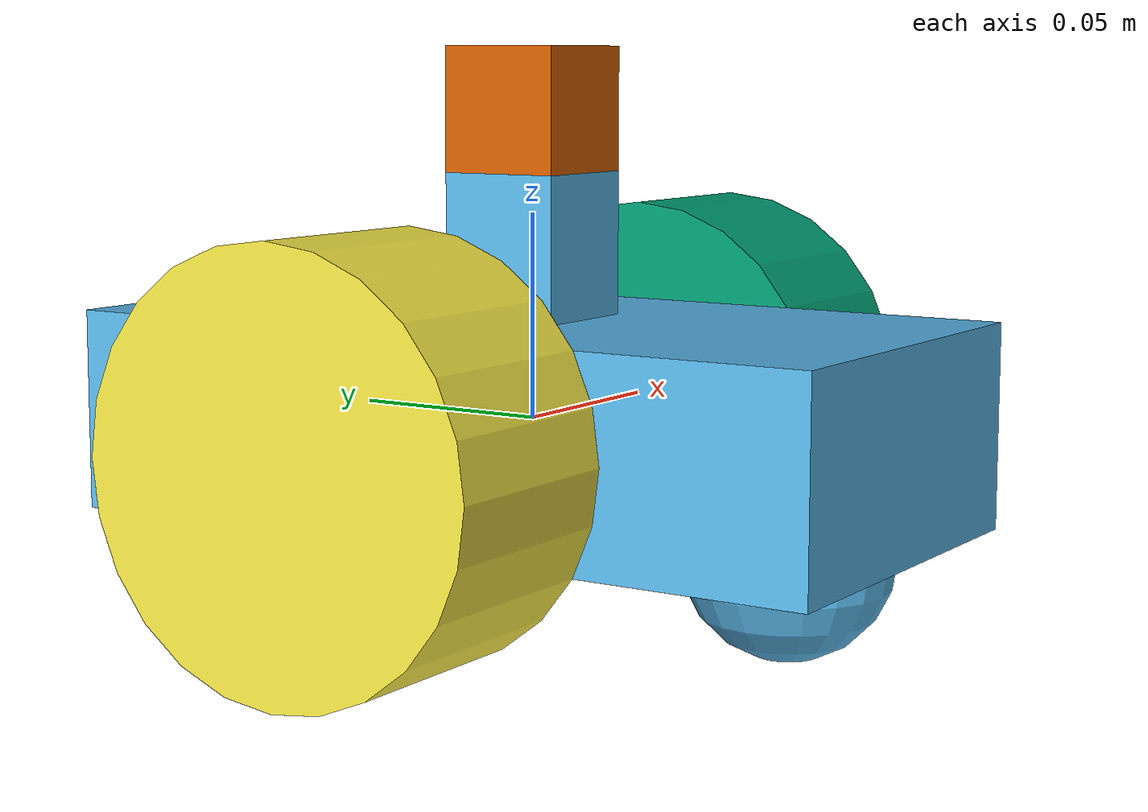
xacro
<?xml version='1.0'?>

<robot name="mouse" xmlns:xacro="http://www.ros.org/wiki/xacro">

  <xacro:include filename="$(find micromouse)/urdf/mouse.gazebo" />

  <link name="base_footprint"></link>

  <joint name="base_footprint_joint" type="fixed">
    <origin xyz="0 0 0" rpy="0 0 0" />
    <parent link="base_footprint"/>
    <child link="base_link" />
  </joint>

  <link name='base_link'>
    <pose>0 0 0.1 0 0 0</pose>

    <inertial>
      <mass value="15"/>
      <origin xyz="0 0 0" rpy="0 0 0"/>
      <inertia
          ixx="0.1" ixy="0" ixz="0"
          iyy="0.1" iyz="0"
          izz="0.1"
      />
    </inertial>

    <collision name='collision'>
      <origin xyz="0 0 0" rpy="0 0 0"/>
      <geometry>
        <box size=".1 .2 .05"/>
      </geometry>
    </collision>

    <visual name='base_link_visual'>
      <origin xyz="0 0 0" rpy="0 0 0"/>
      <geometry>
        <box size=".1 .2 .05"/>
      </geometry>
    </visual>

    <collision name='front_caster_collision'>
      <origin xyz="0 0.07 -0.025" rpy="0 0 0"/>
      <geometry>
        <sphere radius="0.02499"/>
      </geometry>
    </collision>

    <visual name='front_caster_visual'>
      <origin xyz="0 0.07 -0.025" rpy="0 0 0"/>
      <geometry>
        <sphere radius="0.02499"/>
      </geometry>
    </visual>

    <collision name='rear_caster_collision'>
      <origin xyz="0 -0.07 -0.025" rpy="0 0 0"/>
      <geometry>
        <sphere radius="0.02499"/>
      </geometry>
    </collision>

    <visual name='rear_caster_visual'>
      <origin xyz="0 -0.07 -0.025" rpy="0 0 0"/>
      <geometry>
        <sphere radius="0.02499"/>
      </geometry>
    </visual>

    <visual name='lidar_support'>
      <origin xyz="0 0 0.04" rpy="0 0 0"/>
      <geometry>
        <box size=".03 .03 .04"/>
      </geometry>
    </visual>

  </link>

  <joint type="continuous" name="right_wheel_joint">
    <origin xyz="0.05 0 0" rpy="0 0 0"/>
    <child link="right_wheel"/>
    <parent link="base_link"/>
    <axis xyz="1 0 0" rpy="0 0 0"/>
    <limit effort="10000" velocity="1000"/>
    <dynamics damping="1.0" friction="1.0"/>
  </joint>

  <link name='right_wheel'>
    <inertial>
      <mass value="5"/>
      <origin xyz="0 0 0" rpy="0 1.5708 0"/>
      <inertia
          ixx="0.1" ixy="0" ixz="0"
          iyy="0.1" iyz="0"
          izz="0.1"
      />
    </inertial>

    <collision name='collision'>
      <origin xyz="0.025 0 0" rpy="0 1.5708 0"/>
      <geometry>
        <cylinder radius=".05" length=".05"/>
      </geometry>
    </collision>

    <visual name='right_wheel_visual'>
      <origin xyz="0.025 0 0" rpy="0 1.5708 0"/>
      <geometry>
        <cylinder radius=".05" length=".05"/>
      </geometry>
    </visual>
  </link>

  <joint type="continuous" name="left_wheel_joint">
    <origin xyz="-0.05 0 0" rpy="0 0 0"/>
    <child link="left_wheel"/>
    <parent link="base_link"/>
    <axis xyz="1 0 0" rpy="0 0 0"/>
    <limit effort="10000" velocity="1000"/>
    <dynamics damping="1.0" friction="1.0"/>
  </joint>

  <link name='left_wheel'>
    <inertial>
      <mass value="5"/>
      <origin xyz="0 0 0" rpy="0 1.5708 0"/>
      <inertia
          ixx="0.1" ixy="0" ixz="0"
          iyy="0.1" iyz="0"
          izz="0.1"
      />
    </inertial>

    <collision name='collision'>
      <origin xyz="-0.025 0 0" rpy="0 1.5708 0"/>
      <geometry>
        <cylinder radius=".05" length=".05"/>
      </geometry>
    </collision>

    <visual name='left_wheel_visual'>
      <origin xyz="-0.025 0 0" rpy="0 1.5708 0"/>
      <geometry>
        <cylinder radius=".05" length=".05"/>
      </geometry>
    </visual>
  </link>

  <!-- IMU -->
  <joint name="imu_joint" type="fixed">
    <origin xyz="0 0 0" rpy="0 0 0" />
    <parent link="base_link"/>
    <child link="imu_link" />
  </joint>

  <link name="imu_link">
  </link>

  <!-- Lidar -->
  <joint type="fixed" name="scan_joint">
    <origin xyz="0.0 0 0.06" rpy="0 0 0"/>
    <child link="scan_link"/>
    <parent link="base_link"/>
    <axis xyz="0 1 0" rpy="0 0 0"/>
  </joint>

  <link name='scan_link'>
    <inertial>
      <mass value="1e-5"/>
      <origin xyz="0 0 0" rpy="0 0 0"/>
      <inertia
          ixx="1e-6" ixy="0" ixz="0"
          iyy="1e-6" iyz="0"
          izz="1e-6"
      />
    </inertial>

    <collision name='collision'>
      <origin xyz="0 0 0.015" rpy="0 0 0"/>
      <geometry>
        <box size=".03 .03 .03"/>
      </geometry>
    </collision>

    <visual name='scan_link_visual'>
      <origin xyz="0 0 0.015" rpy="0 0 0"/>
      <geometry>
        <box size="0.03 0.03 0.03"/>
      </geometry>
    </visual>

  </link>

</robot>
